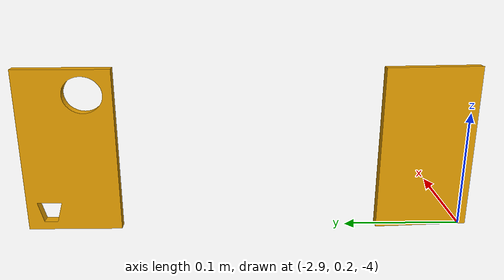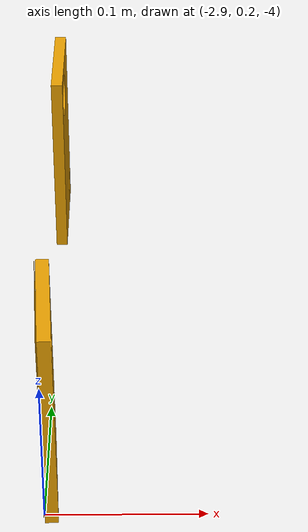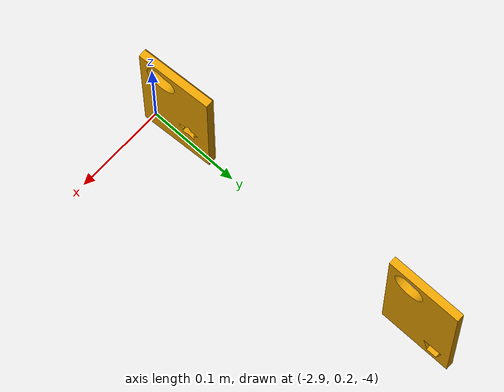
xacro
<?xml version="1.0"?>
<robot name="torpedos_1" xmlns:xacro="http://www.ros.org/wiki/xacro">

<!-- Introducir meshes -->
<xacro:property name="visual_mesh_file" value="file://$(find sim_challenges)/models/meshes/finaltorpedos.dae" />

<link name="torpedos1_base">
    <visual>
        <origin xyz="0 0 -4.0" rpy="0.0 0.0 1.57"/>
        <geometry>
            <mesh filename="${visual_mesh_file}" scale="0.1 0.1 0.1" />
        </geometry>
    </visual>

        <!-- Se deben cambiar los parametros reales-->
    <collision>
      <origin xyz="0.0 0.0 1.57" rpy="0.0 0.0 1.57"/>
      <geometry>
        <mesh filename="${visual_mesh_file}" scale="0.1 0.1 0.1" />
      </geometry>
    </collision>

    <inertial>
      <origin xyz="0.0 0.0 1.57" rpy="0.0 0.0 1.57"/>
      <mass value="1"/>
      <inertia
        ixx="1.0" ixy="0.0" ixz="0.0"
        iyy="1.0" iyz="0.0"
        izz="1.0"/>
    </inertial>
</link>
<gazebo reference="torpedos1_base">
  <selfCollide>0</selfCollide>
  <turnGravityOff>1</turnGravityOff>
</gazebo>

</robot>
